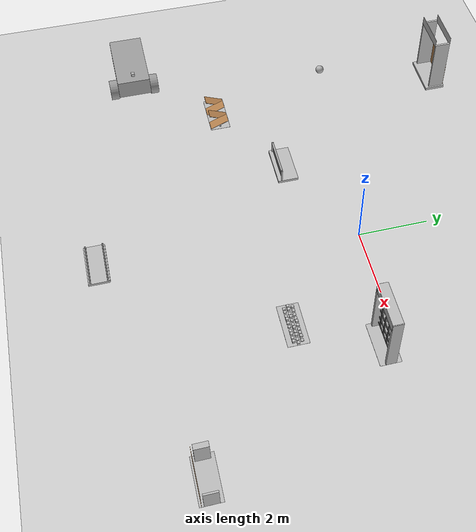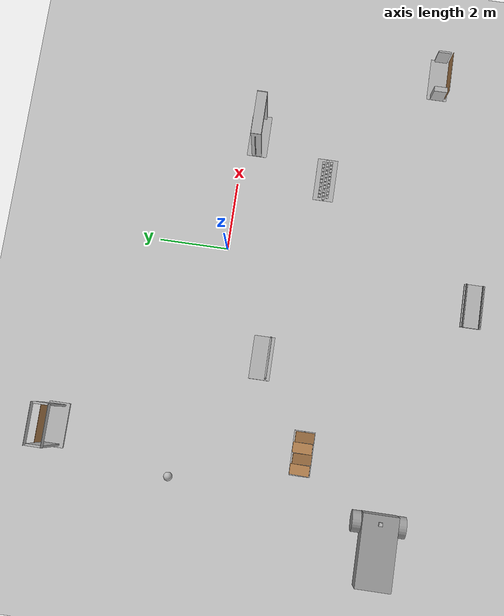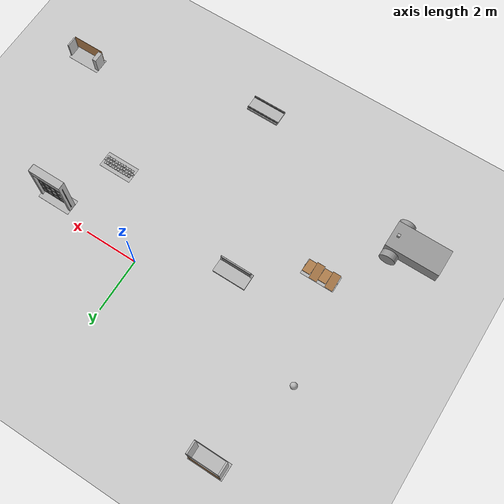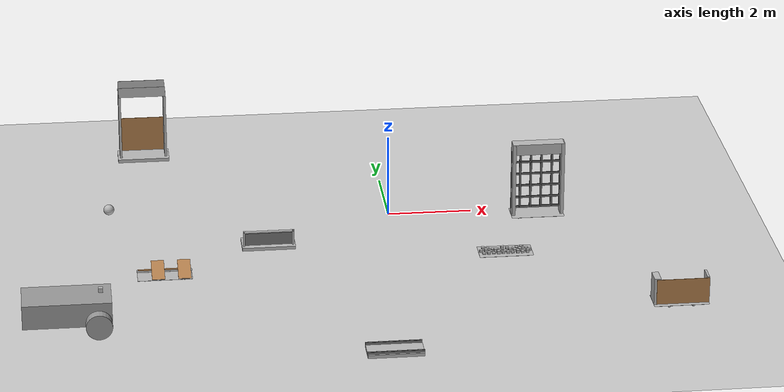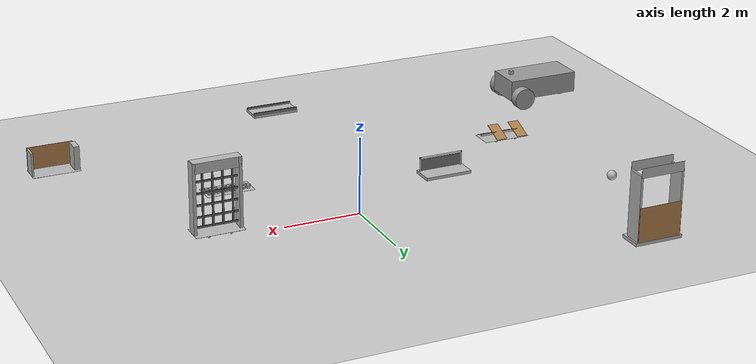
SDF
<sdf version="1.6">
 <world name="default">
  <light name="sun" type="directional">
   <cast_shadows>0</cast_shadows>
   <pose>0 0 10 0 -0 0</pose>
   <diffuse>0.8 0.8 0.8 1</diffuse>
   <specular>0.1 0.1 0.1 1</specular>
   <attenuation>
    <range>1000</range>
    <constant>0.9</constant>
    <linear>0.01</linear>
    <quadratic>0.001</quadratic>
   </attenuation>
   <direction>-0.5 0.5 -1</direction>
  </light>
  <model name="ground_plane">
   <static>1</static>
   <link name="link">
    <collision name="collision">
     <geometry><plane><normal>0 0 1</normal><size>100 100</size></plane></geometry>
     <surface><friction><ode><mu>100</mu><mu2>50</mu2></ode></friction></surface>
    </collision>
    <visual name="visual">
     <cast_shadows>0</cast_shadows>
     <geometry><plane><normal>0 0 1</normal><size>100 100</size></plane></geometry>
     <material>
      <script><uri>file://media/materials/scripts/gazebo.material</uri><name>Gazebo/Grey</name></script>
     </material>
    </visual>
   </link>
  </model>
  <gravity>0 0 -9.8</gravity>
  <magnetic_field>6e-06 2.3e-05 -4.2e-05</magnetic_field>
  <atmosphere type="adiabatic"/>
  <physics name="default_physics" default="0" type="ode">
   <max_step_size>0.001</max_step_size>
   <real_time_factor>1</real_time_factor>
   <real_time_update_rate>1000</real_time_update_rate>
  </physics>
  <scene><ambient>0.4 0.4 0.4 1</ambient><background>0.7 0.7 0.7 1</background><shadows>1</shadows></scene>
  <spherical_coordinates>
   <surface_model>EARTH_WGS84</surface_model>
   <latitude_deg>0</latitude_deg>
   <longitude_deg>0</longitude_deg>
   <elevation>0</elevation>
   <heading_deg>0</heading_deg>
  </spherical_coordinates>
  <model name="follower_vehicle">
   <pose>-7.70692 -5.29778 0.325 0 -0 0</pose>
   <link name="chassis">
    <pose>-0.151427 -0 0.175 0 -0 0</pose>
    <inertial>
     <mass>1.14395</mass>
     <inertia>
      <ixx>0.126164</ixx>
      <ixy>0</ixy>
      <ixz>0</ixz>
      <iyy>0.416519</iyy>
      <iyz>0</iyz>
      <izz>0.481014</izz>
     </inertia>
    </inertial>
    <visual name="visual">
     <geometry><box><size>2.01142 1 0.568726</size></box></geometry>
     <material>
      <script><uri>file://media/materials/scripts/gazebo.material</uri><name>Gazebo/Grey</name></script>
     </material>
    </visual>
    <collision name="collision">
     <geometry><box><size>2.01142 1 0.568726</size></box></geometry>
     <surface>
      <friction><ode><mu>1</mu><mu2>1</mu2><fdir1>0 0 0</fdir1><slip1>0</slip1><slip2>0</slip2></ode></friction>
      <bounce><restitution_coefficient>0</restitution_coefficient><threshold>1e+06</threshold></bounce>
      <contact>
       <collide_without_contact>0</collide_without_contact>
       <collide_without_contact_bitmask>1</collide_without_contact_bitmask>
       <collide_bitmask>1</collide_bitmask>
       <ode>
        <soft_cfm>0</soft_cfm>
        <soft_erp>0.2</soft_erp>
        <kp>1e+13</kp>
        <kd>1</kd>
        <max_vel>0.01</max_vel>
        <min_depth>0</min_depth>
       </ode>
      </contact>
     </surface>
    </collision>
   </link>
   <link name="wheel_1">
    <pose>0.554283 0.625029 -0.025 1.5707 -0 0</pose>
    <inertial>
     <mass>2</mass>
     <inertia><ixx>0.145833</ixx><ixy>0</ixy><ixz>0</ixz><iyy>0.145833</iyy><iyz>0</iyz><izz>0.125</izz></inertia>
    </inertial>
    <visual name="visual">
     <geometry><cylinder><radius>0.3</radius><length>0.25</length></cylinder></geometry>
     <material>
      <script><uri>file://media/materials/scripts/gazebo.material</uri><name>Gazebo/Grey</name></script>
     </material>
    </visual>
    <collision name="collision">
     <geometry><cylinder><radius>0.3</radius><length>0.25</length></cylinder></geometry>
     <surface>
      <friction><ode><mu>1</mu><mu2>1</mu2><fdir1>0 0 0</fdir1><slip1>0</slip1><slip2>0</slip2></ode></friction>
      <bounce><restitution_coefficient>0</restitution_coefficient><threshold>1e+06</threshold></bounce>
      <contact>
       <collide_without_contact>0</collide_without_contact>
       <collide_without_contact_bitmask>1</collide_without_contact_bitmask>
       <collide_bitmask>1</collide_bitmask>
       <ode>
        <soft_cfm>0</soft_cfm>
        <soft_erp>0.2</soft_erp>
        <kp>1e+13</kp>
        <kd>1</kd>
        <max_vel>0.01</max_vel>
        <min_depth>0</min_depth>
       </ode>
      </contact>
     </surface>
    </collision>
   </link>
   <link name="wheel_2">
    <pose>0.554282 -0.625029 -0.025 1.5707 -0 0</pose>
    <inertial>
     <mass>2</mass>
     <inertia><ixx>0.145833</ixx><ixy>0</ixy><ixz>0</ixz><iyy>0.145833</iyy><iyz>0</iyz><izz>0.125</izz></inertia>
    </inertial>
    <visual name="visual">
     <geometry><cylinder><radius>0.3</radius><length>0.25</length></cylinder></geometry>
     <material>
      <script><uri>file://media/materials/scripts/gazebo.material</uri><name>Gazebo/Grey</name></script>
     </material>
    </visual>
    <collision name="collision">
     <geometry><cylinder><radius>0.3</radius><length>0.25</length></cylinder></geometry>
     <surface>
      <friction><ode><mu>1</mu><mu2>1</mu2><fdir1>0 0 0</fdir1><slip1>0</slip1><slip2>0</slip2></ode></friction>
      <bounce><restitution_coefficient>0</restitution_coefficient><threshold>1e+06</threshold></bounce>
      <contact>
       <collide_without_contact>0</collide_without_contact>
       <collide_without_contact_bitmask>1</collide_without_contact_bitmask>
       <collide_bitmask>1</collide_bitmask>
       <ode>
        <soft_cfm>0</soft_cfm>
        <soft_erp>0.2</soft_erp>
        <kp>1e+13</kp>
        <kd>1</kd>
        <max_vel>0.01</max_vel>
        <min_depth>0</min_depth>
       </ode>
      </contact>
     </surface>
    </collision>
   </link>
   <link name="caster">
    <pose>-0.957138 -0 -0.125 0 -0 0</pose>
    <inertial>
     <mass>1</mass>
     <inertia><ixx>0.1</ixx><ixy>0</ixy><ixz>0</ixz><iyy>0.1</iyy><iyz>0</iyz><izz>0.1</izz></inertia>
    </inertial>
    <visual name="visual">
     <geometry><sphere><radius>0.2</radius></sphere></geometry>
     <material>
      <script><uri>file://media/materials/scripts/gazebo.material</uri><name>Gazebo/Grey</name></script>
     </material>
    </visual>
    <collision name="collision">
     <geometry><sphere><radius>0.2</radius></sphere></geometry>
     <surface>
      <friction><ode><mu>1</mu><mu2>1</mu2><fdir1>0 0 0</fdir1><slip1>0</slip1><slip2>0</slip2></ode></friction>
      <bounce><restitution_coefficient>0</restitution_coefficient><threshold>1e+06</threshold></bounce>
      <contact>
       <collide_without_contact>0</collide_without_contact>
       <collide_without_contact_bitmask>1</collide_without_contact_bitmask>
       <collide_bitmask>1</collide_bitmask>
       <ode>
        <soft_cfm>0</soft_cfm>
        <soft_erp>0.2</soft_erp>
        <kp>1e+13</kp>
        <kd>1</kd>
        <max_vel>0.01</max_vel>
        <min_depth>0</min_depth>
       </ode>
      </contact>
     </surface>
    </collision>
   </link>
   <model name="depth_camera">
    <link name="link">
     <pose>0.05 0.05 0.05 0 -0 0</pose>
     <inertial>
      <mass>0.1</mass>
      <inertia>
       <ixx>0.000166667</ixx>
       <iyy>0.000166667</iyy>
       <izz>0.000166667</izz>
       <ixy>0</ixy>
       <ixz>0</ixz>
       <iyz>0</iyz>
      </inertia>
     </inertial>
     <collision name="collision"><geometry><box><size>0.1 0.1 0.1</size></box></geometry></collision>
     <visual name="visual"><geometry><box><size>0.1 0.1 0.1</size></box></geometry></visual>
     <sensor name="camera" type="depth">
      <camera name="depth">
       <horizontal_fov>1.047</horizontal_fov>
       <image><width>320</width><height>240</height></image>
       <clip><near>0.1</near><far>100</far></clip>
      </camera>
      <always_on>1</always_on>
      <update_rate>30</update_rate>
      <visualize>1</visualize>
     </sensor>
    </link>
    <pose>0.569632 -0.03223 0.502056 0 -0 0</pose>
   </model>
   <joint name="chassis_wheel_1_revolute" type="revolute">
    <parent>chassis</parent>
    <child>wheel_1</child>
    <axis>
     <xyz>0 0 1</xyz>
     <use_parent_model_frame>0</use_parent_model_frame>
     <limit>
      <lower>-1.79769e+308</lower>
      <upper>1.79769e+308</upper>
      <effort>-1</effort>
      <velocity>-1</velocity>
     </limit>
     <dynamics>
      <spring_reference>0</spring_reference>
      <spring_stiffness>0</spring_stiffness>
      <damping>0</damping>
      <friction>0</friction>
     </dynamics>
    </axis>
    <physics>
     <ode><limit><cfm>0</cfm><erp>0.2</erp></limit><suspension><cfm>0</cfm><erp>0.2</erp></suspension></ode>
    </physics>
   </joint>
   <joint name="chassis_wheel_2_revolute" type="revolute">
    <parent>chassis</parent>
    <child>wheel_2</child>
    <axis>
     <xyz>0 0 1</xyz>
     <use_parent_model_frame>0</use_parent_model_frame>
     <limit>
      <lower>-1.79769e+308</lower>
      <upper>1.79769e+308</upper>
      <effort>-1</effort>
      <velocity>-1</velocity>
     </limit>
     <dynamics>
      <spring_reference>0</spring_reference>
      <spring_stiffness>0</spring_stiffness>
      <damping>0</damping>
      <friction>0</friction>
     </dynamics>
    </axis>
    <physics>
     <ode><limit><cfm>0</cfm><erp>0.2</erp></limit><suspension><cfm>0</cfm><erp>0.2</erp></suspension></ode>
    </physics>
   </joint>
   <joint name="chassis_caster_ball" type="ball">
    <parent>chassis</parent>
    <child>caster</child>
    <physics>
     <ode><limit><cfm>0</cfm><erp>0.2</erp></limit><suspension><cfm>0</cfm><erp>0.2</erp></suspension></ode>
    </physics>
   </joint>
   <joint name="chassis_depth_camera_link_fixed" type="fixed">
    <parent>chassis</parent>
    <child>depth_camera::link</child>
    <physics>
     <ode><limit><cfm>0</cfm><erp>0.2</erp></limit><suspension><cfm>0</cfm><erp>0.2</erp></suspension></ode>
    </physics>
   </joint>
   <static>0</static>
   <plugin name="follower" filename="libFollowerPlugin.so"/>
  </model>
  <model name="frc2016_ball">
   <pose>-6.71703 0.692442 0.127 0 -0 0</pose>
   <link name="link">
    <inertial>
     <mass>0.213</mass>
     <inertia>
      <ixx>0.00322667</ixx>
      <ixy>0</ixy>
      <ixz>0</ixz>
      <iyy>0.00322667</iyy>
      <iyz>0</iyz>
      <izz>0.00322667</izz>
     </inertia>
    </inertial>
    <visual name="visual"><geometry><sphere><radius>0.127</radius></sphere></geometry></visual>
    <collision name="collision">
     <geometry><sphere><radius>0.127</radius></sphere></geometry>
     <surface>
      <bounce><restitution_coefficient>0.15937</restitution_coefficient><threshold>0</threshold></bounce>
      <contact><ode><max_vel>100</max_vel><min_depth>0.001</min_depth></ode></contact>
     </surface>
    </collision>
   </link>
  </model>
  <model name="frc2016_chevaldefrise">
   <link name="base">
    <inertial>
     <mass>10</mass>
     <pose>0 0 0.15672 0 -0 0</pose>
     <inertia><ixx>0.380221</ixx><ixy>0</ixy><ixz>0</ixz><iyy>1.43365</iyy><iyz>0</iyz><izz>1.64745</izz></inertia>
    </inertial>
    <visual name="platform">
     <pose>0 0 0.06968 0 -0 0</pose>
     <geometry><box><size>1.27 0.5969 0.003175</size></box></geometry>
    </visual>
    <collision name="platform">
     <pose>0 0 0.06968 0 -0 0</pose>
     <geometry><box><size>1.27 0.5969 0.003175</size></box></geometry>
    </collision>
    <visual name="bar">
     <pose>0 0 0.16855 0 1.5707 0</pose>
     <geometry><cylinder><radius>0.02108</radius><length>1.273</length></cylinder></geometry>
    </visual>
    <collision name="bar">
     <pose>0 0 0.16855 0 1.5707 0</pose>
     <geometry><cylinder><radius>0.02108</radius><length>1.27</length></cylinder></geometry>
    </collision>
    <visual name="castor1">
     <pose>-0.45653 -0.16581 0.03175 0 -0 0</pose>
     <geometry><sphere><radius>0.03175</radius></sphere></geometry>
    </visual>
    <collision name="castor1">
     <pose>-0.45653 -0.16581 0.03175 0 -0 0</pose>
     <geometry><sphere><radius>0.03175</radius></sphere></geometry>
    </collision>
    <visual name="castor2">
     <pose>-0.27855 0.21408 0.03175 0 -0 0</pose>
     <geometry><sphere><radius>0.03175</radius></sphere></geometry>
    </visual>
    <collision name="castor2">
     <pose>-0.27855 0.21408 0.03175 0 -0 0</pose>
     <geometry><sphere><radius>0.03175</radius></sphere></geometry>
    </collision>
    <visual name="castor3">
     <pose>0.28191 0.21419 0.03175 0 -0 0</pose>
     <geometry><sphere><radius>0.03175</radius></sphere></geometry>
    </visual>
    <collision name="castor3">
     <pose>0.28191 0.21419 0.03175 0 -0 0</pose>
     <geometry><sphere><radius>0.03175</radius></sphere></geometry>
    </collision>
    <visual name="castor4">
     <pose>0.45965 -0.16602 0.03175 0 -0 0</pose>
     <geometry><sphere><radius>0.03175</radius></sphere></geometry>
    </visual>
    <collision name="castor4">
     <pose>0.45965 -0.16602 0.03175 0 -0 0</pose>
     <geometry><sphere><radius>0.03175</radius></sphere></geometry>
    </collision>
   </link>
   <link name="slant1">
    <pose>-0.4572 0.01307 0.1997 -0.39732 0 0</pose>
    <inertial>
     <pose>0 0.1 0 0 -0 0</pose>
     <mass>2</mass>
     <inertia>
      <ixx>0.0606857</ixx>
      <ixy>0</ixy>
      <ixz>0</ixz>
      <iyy>0.0148723</iyy>
      <iyz>0</iyz>
      <izz>0.0755042</izz>
     </inertia>
    </inertial>
    <visual name="visual">
     <geometry><box><size>0.29845 0.593285 0.0127</size></box></geometry>
     <material><script><name>Gazebo/WoodFloor</name><uri>__default__</uri></script></material>
    </visual>
    <collision name="collision"><geometry><box><size>0.29845 0.593285 0.0127</size></box></geometry></collision>
   </link>
   <link name="slant2">
    <pose>-0.1524 -0.01307 0.1997 0.39732 -0 0</pose>
    <inertial>
     <mass>2</mass>
     <pose>0 -0.1 0 0 -0 0</pose>
     <inertia>
      <ixx>0.0606857</ixx>
      <ixy>0</ixy>
      <ixz>0</ixz>
      <iyy>0.0148723</iyy>
      <iyz>0</iyz>
      <izz>0.0755042</izz>
     </inertia>
    </inertial>
    <visual name="visual">
     <geometry><box><size>0.29845 0.593285 0.0127</size></box></geometry>
     <material><script><name>Gazebo/WoodFloor</name><uri>__default__</uri></script></material>
    </visual>
    <collision name="collision"><geometry><box><size>0.29845 0.593285 0.0127</size></box></geometry></collision>
   </link>
   <link name="slant3">
    <pose>0.1524 0.01307 0.1997 -0.39732 0 0</pose>
    <inertial>
     <pose>0 0.1 0 0 -0 0</pose>
     <mass>2</mass>
     <inertia>
      <ixx>0.0606857</ixx>
      <ixy>0</ixy>
      <ixz>0</ixz>
      <iyy>0.0148723</iyy>
      <iyz>0</iyz>
      <izz>0.0755042</izz>
     </inertia>
    </inertial>
    <visual name="visual">
     <geometry><box><size>0.29845 0.593285 0.0127</size></box></geometry>
     <material><script><name>Gazebo/WoodFloor</name><uri>__default__</uri></script></material>
    </visual>
    <collision name="collision"><geometry><box><size>0.29845 0.593285 0.0127</size></box></geometry></collision>
   </link>
   <link name="slant4">
    <pose>0.4572 -0.01307 0.1997 0.39732 -0 0</pose>
    <inertial>
     <pose>0 -0.1 0 0 -0 0</pose>
     <mass>2</mass>
     <inertia>
      <ixx>0.0606857</ixx>
      <ixy>0</ixy>
      <ixz>0</ixz>
      <iyy>0.0148723</iyy>
      <iyz>0</iyz>
      <izz>0.0755042</izz>
     </inertia>
    </inertial>
    <visual name="visual">
     <geometry><box><size>0.29845 0.593285 0.0127</size></box></geometry>
     <material><script><name>Gazebo/WoodFloor</name><uri>__default__</uri></script></material>
    </visual>
    <collision name="collision"><geometry><box><size>0.29845 0.593285 0.0127</size></box></geometry></collision>
   </link>
   <joint name="slant1_joint" type="revolute">
    <parent>base</parent>
    <child>slant1</child>
    <axis>
     <xyz>1 0 0</xyz>
     <limit><lower>0</lower><upper>1.5707</upper></limit>
     <use_parent_model_frame>0</use_parent_model_frame>
     <dynamics><spring_reference>0</spring_reference><spring_stiffness>0</spring_stiffness></dynamics>
    </axis>
   </joint>
   <joint name="slant2_joint" type="revolute">
    <parent>base</parent>
    <child>slant2</child>
    <axis>
     <xyz>1 0 0</xyz>
     <limit><lower>-1.5707</lower><upper>0</upper></limit>
     <use_parent_model_frame>0</use_parent_model_frame>
     <dynamics><spring_reference>0</spring_reference><spring_stiffness>0</spring_stiffness></dynamics>
    </axis>
   </joint>
   <joint name="slant3_joint" type="revolute">
    <parent>base</parent>
    <child>slant3</child>
    <axis>
     <xyz>1 0 0</xyz>
     <limit><lower>0</lower><upper>1.5707</upper></limit>
     <use_parent_model_frame>0</use_parent_model_frame>
     <dynamics><spring_reference>0</spring_reference><spring_stiffness>0</spring_stiffness></dynamics>
    </axis>
   </joint>
   <joint name="slant4_joint" type="revolute">
    <parent>base</parent>
    <child>slant4</child>
    <axis>
     <xyz>1 0 0</xyz>
     <limit><lower>-1.5707</lower><upper>0</upper></limit>
     <use_parent_model_frame>0</use_parent_model_frame>
     <dynamics><spring_reference>0</spring_reference><spring_stiffness>0</spring_stiffness></dynamics>
    </axis>
   </joint>
   <pose>-5.55579 -2.96331 0 0 -0 0</pose>
  </model>
  <model name="frc2016_drawbridge">
   <link name="base">
    <inertial>
     <mass>10</mass>
     <pose>0 0 1 0 -0 0</pose>
     <inertia><ixx>3.64907</ixx><ixy>0</ixy><ixz>0</ixz><iyy>4.67075</iyy><iyz>0</iyz><izz>1.66649</izz></inertia>
    </inertial>
    <visual name="platform">
     <pose>0 0 0.0425 0 -0 0</pose>
     <geometry><box><size>1.27 0.5969 0.085</size></box></geometry>
    </visual>
    <collision name="platform">
     <pose>0 0 0.0425 0 -0 0</pose>
     <geometry><box><size>1.27 0.5969 0.085</size></box></geometry>
    </collision>
    <visual name="right_wall">
     <pose>0.55879 0.04444 0.889 0 -0 0</pose>
     <geometry><box><size>0.05715 0.45698 1.77165</size></box></geometry>
    </visual>
    <collision name="right_wall">
     <pose>0.55879 0.04444 0.889 0 -0 0</pose>
     <geometry><box><size>0.05715 0.45698 1.77165</size></box></geometry>
    </collision>
    <visual name="left_wall">
     <pose>-0.55879 0.04444 0.889 0 -0 0</pose>
     <geometry><box><size>0.05715 0.45698 1.77165</size></box></geometry>
    </visual>
    <collision name="left_wall">
     <pose>-0.55879 0.04444 0.889 0 -0 0</pose>
     <geometry><box><size>0.05715 0.45698 1.77165</size></box></geometry>
    </collision>
    <visual name="front_upper_wall">
     <pose>0 0.27611 1.84286 0 -0 0</pose>
     <geometry><box><size>1.1557 0.006347 0.254</size></box></geometry>
    </visual>
    <collision name="front_upper_wall">
     <pose>0 0.27611 1.84286 0 -0 0</pose>
     <geometry><box><size>1.1557 0.006347 0.254</size></box></geometry>
    </collision>
    <visual name="back_upper_wall">
     <pose>0 -0.18722 1.84286 0 -0 0</pose>
     <geometry><box><size>1.1557 0.006347 0.254</size></box></geometry>
    </visual>
    <collision name="back_upper_wall">
     <pose>0 -0.18722 1.84286 0 -0 0</pose>
     <geometry><box><size>1.1557 0.006347 0.254</size></box></geometry>
    </collision>
   </link>
   <link name="bridge">
    <pose>0 0.28245 0.50577 0 -0 0</pose>
    <inertial>
     <mass>2</mass>
     <pose>0 -0.28245 -0.50577 0 -0 0</pose>
     <inertia>
      <ixx>0.139361</ixx>
      <ixy>0</ixy>
      <ixz>0</ixz>
      <iyy>0.357088</iyy>
      <iyz>0</iyz>
      <izz>0.217741</izz>
     </inertia>
    </inertial>
    <visual name="visual">
     <geometry><box><size>1.14298 0.006347 0.9144</size></box></geometry>
     <material><script><name>Gazebo/WoodFloor</name><uri>__default__</uri></script></material>
    </visual>
    <collision name="collision"><geometry><box><size>1.14298 0.006347 0.9144</size></box></geometry></collision>
   </link>
   <joint name="bridge_joint" type="revolute">
    <pose>0 0 -0.4172 0 -0 0</pose>
    <parent>base</parent>
    <child>bridge</child>
    <axis>
     <xyz>1 0 0</xyz>
     <limit><lower>-2</lower><upper>0</upper></limit>
     <use_parent_model_frame>0</use_parent_model_frame>
     <dynamics><spring_reference>0</spring_reference><spring_stiffness>0</spring_stiffness></dynamics>
    </axis>
   </joint>
   <pose>-5.73625 4.07642 0 0 -0 0</pose>
  </model>
  <model name="frc2016_lowbar">
   <link name="base">
    <inertial>
     <mass>50</mass>
     <inertia>
      <ixx>0.035543</ixx>
      <ixy>0</ixy>
      <ixz>0</ixz>
      <iyy>0.134412</iyy>
      <iyz>0</iyz>
      <izz>0.165376</izz>
     </inertia>
    </inertial>
    <visual name="platform">
     <pose>0 0 0.039065 0 -0 0</pose>
     <geometry><box><size>1.26 0.5996 0.07813</size></box></geometry>
    </visual>
    <collision name="platform">
     <pose>0 0 0.039065 0 -0 0</pose>
     <geometry><box><size>1.27 0.6096 0.07813</size></box></geometry>
    </collision>
    <visual name="right_column">
     <pose>-0.57845 -0.18464 0.26863 0 -0 0</pose>
     <geometry><cylinder><radius>0.0254</radius><length>0.381</length></cylinder></geometry>
    </visual>
    <collision name="right_column">
     <pose>-0.57845 -0.18464 0.26863 0 -0 0</pose>
     <geometry><cylinder><radius>0.0254</radius><length>0.381</length></cylinder></geometry>
    </collision>
    <visual name="left_column">
     <pose>0.57845 -0.18464 0.26863 0 -0 0</pose>
     <geometry><cylinder><radius>0.0254</radius><length>0.381</length></cylinder></geometry>
    </visual>
    <collision name="left_column">
     <pose>0.57845 -0.18464 0.26863 0 -0 0</pose>
     <geometry><cylinder><radius>0.0254</radius><length>0.381</length></cylinder></geometry>
    </collision>
    <visual name="horizontal">
     <pose>0 -0.18464 0.43556 0 1.5707 0</pose>
     <geometry><cylinder><radius>0.0254</radius><length>1.2018</length></cylinder></geometry>
    </visual>
    <collision name="horizontal">
     <pose>0 -0.18464 0.43556 0 1.5707 0</pose>
     <geometry><cylinder><radius>0.0254</radius><length>1.2018</length></cylinder></geometry>
    </collision>
   </link>
   <link name="wall">
    <pose>0 -0.1778 0.24323 0 -0 0</pose>
    <inertial>
     <mass>1</mass>
     <inertia>
      <ixx>0.00774528</ixx>
      <ixy>0</ixy>
      <ixz>0</ixz>
      <iyy>0.116613</iyy>
      <iyz>0</iyz>
      <izz>0.108874</izz>
     </inertia>
    </inertial>
    <visual name="visual">
     <geometry><box><size>1.1176 0.00635 0.3</size></box></geometry>
     <material><ambient>0.46 0.46 0.46 1</ambient><diffuse>0.46 0.46 0.46 1</diffuse></material>
    </visual>
    <collision name="collision"><geometry><box><size>1.143 0.00635 0.3</size></box></geometry></collision>
   </link>
   <joint name="bar_joint" type="revolute">
    <pose>0 0 0.36378 0 -0 0</pose>
    <parent>base</parent>
    <child>wall</child>
    <axis>
     <xyz>1 0 0</xyz>
     <limit><lower>-1.5707</lower><upper>1.5707</upper></limit>
     <use_parent_model_frame>0</use_parent_model_frame>
     <dynamics><spring_reference>0</spring_reference><spring_stiffness>0</spring_stiffness></dynamics>
    </axis>
   </joint>
   <pose>-3.02921 -1.44526 0 0 -0 0</pose>
  </model>
  <model name="frc2016_moat">
   <static>1</static>
   <link name="link">
    <inertial>
     <mass>10</mass>
     <pose>0 0 0.06738 0 -0 0</pose>
     <inertia><ixx>0.312195</ixx><ixy>0</ixy><ixz>0</ixz><iyy>1.35927</iyy><iyz>0</iyz><izz>1.64109</izz></inertia>
    </inertial>
    <visual name="platform">
     <pose>0 0 0.0381 0 -0 0</pose>
     <geometry><box><size>1.27 0.5969 0.0762</size></box></geometry>
    </visual>
    <collision name="platform">
     <pose>0 0 0.0381 0 -0 0</pose>
     <geometry><box><size>1.27 0.5969 0.0762</size></box></geometry>
    </collision>
    <visual name="tube1_side1">
     <pose>0 -0.25876 0.10301 0 -0 0</pose>
     <geometry><box><size>1.27 0.003175 0.0635</size></box></geometry>
     <material><ambient>0.46 0.46 0.46 1</ambient><diffuse>0.46 0.46 0.46 1</diffuse></material>
    </visual>
    <collision name="tube1_side1">
     <pose>0 -0.25876 0.10301 0 -0 0</pose>
     <geometry><box><size>1.27 0.003175 0.0635</size></box></geometry>
    </collision>
    <visual name="tube1_side2">
     <pose>0 -0.22384 0.10301 0 -0 0</pose>
     <geometry><box><size>1.27 0.003175 0.0635</size></box></geometry>
     <material><ambient>0.46 0.46 0.46 1</ambient><diffuse>0.46 0.46 0.46 1</diffuse></material>
    </visual>
    <collision name="tube1_side2">
     <pose>0 -0.22384 0.10301 0 -0 0</pose>
     <geometry><box><size>1.27 0.003175 0.0635</size></box></geometry>
    </collision>
    <visual name="tube1_top">
     <pose>0 -0.2413 0.13317 0 -0 0</pose>
     <geometry><box><size>1.27 0.0381 0.003175</size></box></geometry>
     <material><ambient>0.46 0.46 0.46 1</ambient><diffuse>0.46 0.46 0.46 1</diffuse></material>
    </visual>
    <collision name="tube1_top">
     <pose>0 -0.2413 0.13317 0 -0 0</pose>
     <geometry><box><size>1.27 0.0381 0.003175</size></box></geometry>
    </collision>
    <visual name="tube2_side1">
     <pose>0 0.22384 0.10301 0 -0 0</pose>
     <geometry><box><size>1.27 0.003175 0.0635</size></box></geometry>
     <material><ambient>0.46 0.46 0.46 1</ambient><diffuse>0.46 0.46 0.46 1</diffuse></material>
    </visual>
    <collision name="tube2_side1">
     <pose>0 0.22384 0.10301 0 -0 0</pose>
     <geometry><box><size>1.27 0.003175 0.0635</size></box></geometry>
    </collision>
    <visual name="tube2_side2">
     <pose>0 0.25876 0.10301 0 -0 0</pose>
     <geometry><box><size>1.27 0.003175 0.0635</size></box></geometry>
     <material><ambient>0.46 0.46 0.46 1</ambient><diffuse>0.46 0.46 0.46 1</diffuse></material>
    </visual>
    <collision name="tube2_side2">
     <pose>0 0.25876 0.10301 0 -0 0</pose>
     <geometry><box><size>1.27 0.003175 0.0635</size></box></geometry>
    </collision>
    <visual name="tube2_top">
     <pose>0 0.2413 0.13317 0 -0 0</pose>
     <geometry><box><size>1.27 0.0381 0.003175</size></box></geometry>
     <material><ambient>0.46 0.46 0.46 1</ambient><diffuse>0.46 0.46 0.46 1</diffuse></material>
    </visual>
    <collision name="tube2_top">
     <pose>0 0.2413 0.13317 0 -0 0</pose>
     <geometry><box><size>1.27 0.0381 0.003175</size></box></geometry>
    </collision>
   </link>
   <pose>-0.677547 -7.29799 0 0 -0 0</pose>
  </model>
  <model name="frc2016_portcullis">
   <link name="base">
    <inertial>
     <mass>50</mass>
     <pose>0 0 1.02941 0 -0 0</pose>
     <inertia><ixx>3.81711</ixx><ixy>0</ixy><ixz>0</ixz><iyy>4.87698</iyy><iyz>0</iyz><izz>1.6283</izz></inertia>
    </inertial>
    <visual name="platform">
     <pose>0 0 0.07284 0 -0 0</pose>
     <geometry><box><size>1.27 0.5842 0.003175</size></box></geometry>
    </visual>
    <collision name="platform">
     <pose>0 0 0.07284 0 -0 0</pose>
     <geometry><box><size>1.27 0.5842 0.003175</size></box></geometry>
    </collision>
    <visual name="left_column">
     <pose>0.59284 0 0.99042 0 -0 0</pose>
     <geometry><box><size>0.08375 0.28575 1.83198</size></box></geometry>
    </visual>
    <collision name="left_column">
     <pose>0.59284 0 0.99042 0 -0 0</pose>
     <geometry><box><size>0.08375 0.28575 1.83198</size></box></geometry>
    </collision>
    <visual name="right_column">
     <pose>-0.57759 0 0.99042 0 -0 0</pose>
     <geometry><box><size>0.08375 0.28575 1.83198</size></box></geometry>
    </visual>
    <collision name="right_column">
     <pose>-0.57759 0 0.99042 0 -0 0</pose>
     <geometry><box><size>0.08375 0.28575 1.83198</size></box></geometry>
    </collision>
    <visual name="top">
     <pose>-0.00034 0 1.77722 0 -0 0</pose>
     <geometry><box><size>1.22962 0.28575 0.26657</size></box></geometry>
    </visual>
    <collision name="top">
     <pose>-0.00034 0 1.77722 0 -0 0</pose>
     <geometry><box><size>1.22962 0.28575 0.26657</size></box></geometry>
    </collision>
    <visual name="castor1">
     <pose>-0.45651 -0.16234 0.03272 0 -0 0</pose>
     <geometry><sphere><radius>0.03272</radius></sphere></geometry>
    </visual>
    <collision name="castor1">
     <pose>-0.45651 -0.16234 0.03272 0 -0 0</pose>
     <geometry><sphere><radius>0.03272</radius></sphere></geometry>
    </collision>
    <visual name="castor2">
     <pose>-0.27883 0.21836 0.03272 0 -0 0</pose>
     <geometry><sphere><radius>0.03272</radius></sphere></geometry>
    </visual>
    <collision name="castor2">
     <pose>-0.27883 0.21836 0.03272 0 -0 0</pose>
     <geometry><sphere><radius>0.03272</radius></sphere></geometry>
    </collision>
    <visual name="castor3">
     <pose>0.28083 0.21906 0.03272 0 -0 0</pose>
     <geometry><sphere><radius>0.03272</radius></sphere></geometry>
    </visual>
    <collision name="castor3">
     <pose>0.28083 0.21906 0.03272 0 -0 0</pose>
     <geometry><sphere><radius>0.03272</radius></sphere></geometry>
    </collision>
    <visual name="castor4">
     <pose>0.45871 -0.16186 0.03272 0 -0 0</pose>
     <geometry><sphere><radius>0.03272</radius></sphere></geometry>
    </visual>
    <collision name="castor4">
     <pose>0.45871 -0.16186 0.03272 0 -0 0</pose>
     <geometry><sphere><radius>0.03272</radius></sphere></geometry>
    </collision>
   </link>
   <link name="gate">
    <pose>-0.0287 0.02885 0.93327 0 -0 0</pose>
    <inertial>
     <mass>2</mass>
     <inertia><ixx>3.81711</ixx><ixy>0</ixy><ixz>0</ixz><iyy>4.87698</iyy><iyz>0</iyz><izz>1.6283</izz></inertia>
    </inertial>
    <collision name="collision"><geometry><box><size>1.1938 0.02496 1.45732</size></box></geometry></collision>
    <visual name="horz_1">
     <pose>0 0 -0.70326 0 -0 0</pose>
     <geometry><box><size>1.1938 0.02496 0.0508</size></box></geometry>
     <material><ambient>0.4 0.4 0.4 1</ambient><diffuse>0.4 0.4 0.4 1</diffuse></material>
    </visual>
    <visual name="horz_2">
     <pose>0 0 -0.44926 0 -0 0</pose>
     <geometry><box><size>1.1938 0.02496 0.0508</size></box></geometry>
     <material><ambient>0.4 0.4 0.4 1</ambient><diffuse>0.4 0.4 0.4 1</diffuse></material>
    </visual>
    <visual name="horz_3">
     <pose>0 0 -0.14517 0 -0 0</pose>
     <geometry><box><size>1.1938 0.02496 0.0508</size></box></geometry>
     <material><ambient>0.4 0.4 0.4 1</ambient><diffuse>0.4 0.4 0.4 1</diffuse></material>
    </visual>
    <visual name="horz_4">
     <pose>0 0 0.16034 0 -0 0</pose>
     <geometry><box><size>1.1938 0.02496 0.0508</size></box></geometry>
     <material><ambient>0.4 0.4 0.4 1</ambient><diffuse>0.4 0.4 0.4 1</diffuse></material>
    </visual>
    <visual name="horz_5">
     <pose>0 0 0.46514 0 -0 0</pose>
     <geometry><box><size>1.1938 0.02496 0.0508</size></box></geometry>
     <material><ambient>0.4 0.4 0.4 1</ambient><diffuse>0.4 0.4 0.4 1</diffuse></material>
    </visual>
    <visual name="horz_6">
     <pose>0 0 0.72994 0 -0 0</pose>
     <geometry><box><size>1.1938 0.02496 0.0508</size></box></geometry>
     <material><ambient>0.4 0.4 0.4 1</ambient><diffuse>0.4 0.4 0.4 1</diffuse></material>
    </visual>
    <visual name="vert_1">
     <pose>-0.58448 0 0 0 -0 0</pose>
     <geometry><box><size>0.02495 0.02496 1.45732</size></box></geometry>
     <material><ambient>0.4 0.4 0.4 1</ambient><diffuse>0.4 0.4 0.4 1</diffuse></material>
    </visual>
    <visual name="vert_2">
     <pose>-0.38128 0 0 0 -0 0</pose>
     <geometry><box><size>0.0508 0.02496 1.45732</size></box></geometry>
     <material><ambient>0.4 0.4 0.4 1</ambient><diffuse>0.4 0.4 0.4 1</diffuse></material>
    </visual>
    <visual name="vert_3">
     <pose>-0.12728 0 0 0 -0 0</pose>
     <geometry><box><size>0.0508 0.02496 1.45732</size></box></geometry>
     <material><ambient>0.4 0.4 0.4 1</ambient><diffuse>0.4 0.4 0.4 1</diffuse></material>
    </visual>
    <visual name="vert_4">
     <pose>0.12672 0 0 0 -0 0</pose>
     <geometry><box><size>0.0508 0.02496 1.45732</size></box></geometry>
     <material><ambient>0.4 0.4 0.4 1</ambient><diffuse>0.4 0.4 0.4 1</diffuse></material>
    </visual>
    <visual name="vert_5">
     <pose>0.38072 0 0 0 -0 0</pose>
     <geometry><box><size>0.0508 0.02496 1.45732</size></box></geometry>
     <material><ambient>0.4 0.4 0.4 1</ambient><diffuse>0.4 0.4 0.4 1</diffuse></material>
    </visual>
    <visual name="vert_6">
     <pose>0.58392 0 0 0 -0 0</pose>
     <geometry><box><size>0.02495 0.02496 1.45732</size></box></geometry>
     <material><ambient>0.4 0.4 0.4 1</ambient><diffuse>0.4 0.4 0.4 1</diffuse></material>
    </visual>
   </link>
   <joint name="joint" type="prismatic">
    <parent>base</parent>
    <child>gate</child>
    <axis>
     <xyz>0 0 1</xyz>
     <limit><lower>0</lower><upper>1</upper></limit>
     <use_parent_model_frame>0</use_parent_model_frame>
     <dynamics><spring_reference>0</spring_reference><spring_stiffness>0</spring_stiffness></dynamics>
    </axis>
   </joint>
   <pose>3.54919 -0.428059 0 0 -0 0</pose>
  </model>
  <model name="frc2016_roughterrain">
   <static>1</static>
   <link name="link">
    <visual name="platform">
     <pose>0 0 0.08269 0 -0 0</pose>
     <geometry><box><size>1.27 0.5969 0.003175</size></box></geometry>
    </visual>
    <collision name="platform">
     <pose>0 0 0.08269 0 -0 0</pose>
     <geometry><box><size>1.27 0.5969 0.003175</size></box></geometry>
    </collision>
    <visual name="row1_block1_sm">
     <pose>0.51435 0.1143 0.09698 0 -0 0</pose>
     <geometry><box><size>0.0762 0.0762 0.0254</size></box></geometry>
    </visual>
    <collision name="row1_block1_sm">
     <pose>0.51435 0.1143 0.09698 0 -0 0</pose>
     <geometry><box><size>0.0762 0.0762 0.0254</size></box></geometry>
    </collision>
    <visual name="row1_block2_lg">
     <pose>0.40005 0.1143 0.12238 0 -0 0</pose>
     <geometry><box><size>0.0762 0.0762 0.0762</size></box></geometry>
    </visual>
    <collision name="row1_block2_lg">
     <pose>0.40005 0.1143 0.12238 0 -0 0</pose>
     <geometry><box><size>0.0762 0.0762 0.0762</size></box></geometry>
    </collision>
    <visual name="row1_block3_md">
     <pose>0.28575 0.1143 0.10968 0 -0 0</pose>
     <geometry><box><size>0.0762 0.0762 0.0508</size></box></geometry>
    </visual>
    <collision name="row1_block3_md">
     <pose>0.28575 0.1143 0.10968 0 -0 0</pose>
     <geometry><box><size>0.0762 0.0762 0.0508</size></box></geometry>
    </collision>
    <visual name="row1_block4_sm">
     <pose>0.17145 0.1143 0.09698 0 -0 0</pose>
     <geometry><box><size>0.0762 0.0762 0.0254</size></box></geometry>
    </visual>
    <collision name="row1_block4_sm">
     <pose>0.17145 0.1143 0.09698 0 -0 0</pose>
     <geometry><box><size>0.0762 0.0762 0.0254</size></box></geometry>
    </collision>
    <visual name="row1_block5_md">
     <pose>0.05715 0.1143 0.10968 0 -0 0</pose>
     <geometry><box><size>0.0762 0.0762 0.0508</size></box></geometry>
    </visual>
    <collision name="row1_block5_md">
     <pose>0.05715 0.1143 0.10968 0 -0 0</pose>
     <geometry><box><size>0.0762 0.0762 0.0508</size></box></geometry>
    </collision>
    <visual name="row1_block6_lg">
     <pose>-0.05715 0.1143 0.12238 0 -0 0</pose>
     <geometry><box><size>0.0762 0.0762 0.0762</size></box></geometry>
    </visual>
    <collision name="row1_block6_lg">
     <pose>-0.05715 0.1143 0.12238 0 -0 0</pose>
     <geometry><box><size>0.0762 0.0762 0.0762</size></box></geometry>
    </collision>
    <visual name="row1_block7_sm">
     <pose>-0.17145 0.1143 0.09698 0 -0 0</pose>
     <geometry><box><size>0.0762 0.0762 0.0254</size></box></geometry>
    </visual>
    <collision name="row1_block7_sm">
     <pose>-0.17145 0.1143 0.09698 0 -0 0</pose>
     <geometry><box><size>0.0762 0.0762 0.0254</size></box></geometry>
    </collision>
    <visual name="row1_block8_sm">
     <pose>-0.28575 0.1143 0.09698 0 -0 0</pose>
     <geometry><box><size>0.0762 0.0762 0.0254</size></box></geometry>
    </visual>
    <collision name="row1_block8_sm">
     <pose>-0.28575 0.1143 0.09698 0 -0 0</pose>
     <geometry><box><size>0.0762 0.0762 0.0254</size></box></geometry>
    </collision>
    <visual name="row1_block9_md">
     <pose>-0.40005 0.1143 0.10968 0 -0 0</pose>
     <geometry><box><size>0.0762 0.0762 0.0508</size></box></geometry>
    </visual>
    <collision name="row1_block9_md">
     <pose>-0.40005 0.1143 0.10968 0 -0 0</pose>
     <geometry><box><size>0.0762 0.0762 0.0508</size></box></geometry>
    </collision>
    <visual name="row1_block10_lg">
     <pose>-0.51435 0.1143 0.12238 0 -0 0</pose>
     <geometry><box><size>0.0762 0.0762 0.0762</size></box></geometry>
    </visual>
    <collision name="row1_block10_lg">
     <pose>-0.51435 0.1143 0.12238 0 -0 0</pose>
     <geometry><box><size>0.0762 0.0762 0.0762</size></box></geometry>
    </collision>
    <visual name="row2_block1_md">
     <pose>0.5715 0 0.10968 0 -0 0</pose>
     <geometry><box><size>0.0762 0.0762 0.0508</size></box></geometry>
    </visual>
    <collision name="row2_block1_md">
     <pose>0.5715 0 0.10968 0 -0 0</pose>
     <geometry><box><size>0.0762 0.0762 0.0508</size></box></geometry>
    </collision>
    <visual name="row2_block2_sm">
     <pose>0.4572 0 0.09698 0 -0 0</pose>
     <geometry><box><size>0.0762 0.0762 0.0254</size></box></geometry>
    </visual>
    <collision name="row2_block2_sm">
     <pose>0.4572 0 0.09698 0 -0 0</pose>
     <geometry><box><size>0.0762 0.0762 0.0254</size></box></geometry>
    </collision>
    <visual name="row2_block3_lg">
     <pose>0.3429 0 0.12238 0 -0 0</pose>
     <geometry><box><size>0.0762 0.0762 0.0762</size></box></geometry>
    </visual>
    <collision name="row2_block3_lg">
     <pose>0.3429 0 0.12238 0 -0 0</pose>
     <geometry><box><size>0.0762 0.0762 0.0762</size></box></geometry>
    </collision>
    <visual name="row2_block4_md">
     <pose>0.2286 0 0.10968 0 -0 0</pose>
     <geometry><box><size>0.0762 0.0762 0.0508</size></box></geometry>
    </visual>
    <collision name="row2_block4_md">
     <pose>0.2286 0 0.10968 0 -0 0</pose>
     <geometry><box><size>0.0762 0.0762 0.0508</size></box></geometry>
    </collision>
    <visual name="row2_block5_lg">
     <pose>0.1143 0 0.12238 0 -0 0</pose>
     <geometry><box><size>0.0762 0.0762 0.0762</size></box></geometry>
    </visual>
    <collision name="row2_block5_lg">
     <pose>0.1143 0 0.12238 0 -0 0</pose>
     <geometry><box><size>0.0762 0.0762 0.0762</size></box></geometry>
    </collision>
    <visual name="row2_block6_sm">
     <pose>0 0 0.09698 0 -0 0</pose>
     <geometry><box><size>0.0762 0.0762 0.0254</size></box></geometry>
    </visual>
    <collision name="row2_block6_sm">
     <pose>0 0 0.09698 0 -0 0</pose>
     <geometry><box><size>0.0762 0.0762 0.0254</size></box></geometry>
    </collision>
    <visual name="row2_block7_md">
     <pose>-0.1143 0 0.10968 0 -0 0</pose>
     <geometry><box><size>0.0762 0.0762 0.0508</size></box></geometry>
    </visual>
    <collision name="row2_block7_md">
     <pose>-0.1143 0 0.10968 0 -0 0</pose>
     <geometry><box><size>0.0762 0.0762 0.0508</size></box></geometry>
    </collision>
    <visual name="row2_block8_lg">
     <pose>-0.2286 0 0.12238 0 -0 0</pose>
     <geometry><box><size>0.0762 0.0762 0.0762</size></box></geometry>
    </visual>
    <collision name="row2_block8_lg">
     <pose>-0.2286 0 0.12238 0 -0 0</pose>
     <geometry><box><size>0.0762 0.0762 0.0762</size></box></geometry>
    </collision>
    <visual name="row2_block9_sm">
     <pose>-0.3429 0 0.09698 0 -0 0</pose>
     <geometry><box><size>0.0762 0.0762 0.0254</size></box></geometry>
    </visual>
    <collision name="row2_block9_sm">
     <pose>-0.3429 0 0.09698 0 -0 0</pose>
     <geometry><box><size>0.0762 0.0762 0.0254</size></box></geometry>
    </collision>
    <visual name="row2_block10_lg">
     <pose>-0.4572 0 0.12238 0 -0 0</pose>
     <geometry><box><size>0.0762 0.0762 0.0762</size></box></geometry>
    </visual>
    <collision name="row2_block10_lg">
     <pose>-0.4572 0 0.12238 0 -0 0</pose>
     <geometry><box><size>0.0762 0.0762 0.0762</size></box></geometry>
    </collision>
    <visual name="row2_block11_md">
     <pose>-0.5715 0 0.10968 0 -0 0</pose>
     <geometry><box><size>0.0762 0.0762 0.0508</size></box></geometry>
    </visual>
    <collision name="row2_block11_md">
     <pose>-0.5715 0 0.10968 0 -0 0</pose>
     <geometry><box><size>0.0762 0.0762 0.0508</size></box></geometry>
    </collision>
    <visual name="row3_block1_lg">
     <pose>0.51435 -0.1143 0.12238 0 -0 0</pose>
     <geometry><box><size>0.0762 0.0762 0.0762</size></box></geometry>
    </visual>
    <collision name="row3_block1_lg">
     <pose>0.51435 -0.1143 0.12238 0 -0 0</pose>
     <geometry><box><size>0.0762 0.0762 0.0762</size></box></geometry>
    </collision>
    <visual name="row3_block2_md">
     <pose>0.40005 -0.1143 0.10968 0 -0 0</pose>
     <geometry><box><size>0.0762 0.0762 0.0508</size></box></geometry>
    </visual>
    <collision name="row3_block2_md">
     <pose>0.40005 -0.1143 0.10968 0 -0 0</pose>
     <geometry><box><size>0.0762 0.0762 0.0508</size></box></geometry>
    </collision>
    <visual name="row3_block3_lg">
     <pose>0.28575 -0.1143 0.12238 0 -0 0</pose>
     <geometry><box><size>0.0762 0.0762 0.0762</size></box></geometry>
    </visual>
    <collision name="row3_block3_lg">
     <pose>0.28575 -0.1143 0.12238 0 -0 0</pose>
     <geometry><box><size>0.0762 0.0762 0.0762</size></box></geometry>
    </collision>
    <visual name="row3_block4_sm">
     <pose>0.17145 -0.1143 0.09698 0 -0 0</pose>
     <geometry><box><size>0.0762 0.0762 0.0254</size></box></geometry>
    </visual>
    <collision name="row3_block4_sm">
     <pose>0.17145 -0.1143 0.09698 0 -0 0</pose>
     <geometry><box><size>0.0762 0.0762 0.0254</size></box></geometry>
    </collision>
    <visual name="row3_block5_md">
     <pose>0.05715 -0.1143 0.10968 0 -0 0</pose>
     <geometry><box><size>0.0762 0.0762 0.0508</size></box></geometry>
    </visual>
    <collision name="row3_block5_md">
     <pose>0.05715 -0.1143 0.10968 0 -0 0</pose>
     <geometry><box><size>0.0762 0.0762 0.0508</size></box></geometry>
    </collision>
    <visual name="row3_block6_md">
     <pose>-0.05715 -0.1143 0.10968 0 -0 0</pose>
     <geometry><box><size>0.0762 0.0762 0.0508</size></box></geometry>
    </visual>
    <collision name="row3_block6_md">
     <pose>-0.05715 -0.1143 0.10968 0 -0 0</pose>
     <geometry><box><size>0.0762 0.0762 0.0508</size></box></geometry>
    </collision>
    <visual name="row3_block7_lg">
     <pose>-0.17145 -0.1143 0.12238 0 -0 0</pose>
     <geometry><box><size>0.0762 0.0762 0.0762</size></box></geometry>
    </visual>
    <collision name="row3_block7_lg">
     <pose>-0.17145 -0.1143 0.12238 0 -0 0</pose>
     <geometry><box><size>0.0762 0.0762 0.0762</size></box></geometry>
    </collision>
    <visual name="row3_block8_sm">
     <pose>-0.28575 -0.1143 0.09698 0 -0 0</pose>
     <geometry><box><size>0.0762 0.0762 0.0254</size></box></geometry>
    </visual>
    <collision name="row3_block8_sm">
     <pose>-0.28575 -0.1143 0.09698 0 -0 0</pose>
     <geometry><box><size>0.0762 0.0762 0.0254</size></box></geometry>
    </collision>
    <visual name="row3_block9_md">
     <pose>-0.40005 -0.1143 0.10968 0 -0 0</pose>
     <geometry><box><size>0.0762 0.0762 0.0508</size></box></geometry>
    </visual>
    <collision name="row3_block9_md">
     <pose>-0.40005 -0.1143 0.10968 0 -0 0</pose>
     <geometry><box><size>0.0762 0.0762 0.0508</size></box></geometry>
    </collision>
    <visual name="row3_block10_sm">
     <pose>-0.51435 -0.1143 0.09698 0 -0 0</pose>
     <geometry><box><size>0.0762 0.0762 0.0254</size></box></geometry>
    </visual>
    <collision name="row3_block10_sm">
     <pose>-0.51435 -0.1143 0.09698 0 -0 0</pose>
     <geometry><box><size>0.0762 0.0762 0.0254</size></box></geometry>
    </collision>
   </link>
   <pose>2.47401 -2.55738 0 0 -0 0</pose>
  </model>
  <model name="frc2016_sallyport">
   <link name="base">
    <inertial>
     <mass>50</mass>
     <pose>0 0 0.35406 0 -0 0</pose>
     <inertia><ixx>0.727808</ixx><ixy>0</ixy><ixz>0</ixz><iyy>1.77488</iyy><iyz>0</iyz><izz>1.64109</izz></inertia>
    </inertial>
    <visual name="platform">
     <pose>0 0 0.06974 0 -0 0</pose>
     <geometry><box><size>1.27 0.5969 0.003175</size></box></geometry>
    </visual>
    <collision name="platform">
     <pose>0 0 0.06974 0 -0 0</pose>
     <geometry><box><size>1.27 0.5969 0.003175</size></box></geometry>
    </collision>
    <visual name="left_column">
     <pose>-0.5588 0.00318 0.38876 0 -0 0</pose>
     <geometry><box><size>0.1524 0.38735 0.635</size></box></geometry>
    </visual>
    <collision name="left_column">
     <pose>-0.5588 0.00318 0.38876 0 -0 0</pose>
     <geometry><box><size>0.1524 0.38735 0.635</size></box></geometry>
    </collision>
    <visual name="right_column">
     <pose>0.6096 0.00635 0.38876 0 -0 0</pose>
     <geometry><box><size>0.0508 0.381 0.635</size></box></geometry>
    </visual>
    <collision name="right_column">
     <pose>0.6096 0.00635 0.38876 0 -0 0</pose>
     <geometry><box><size>0.0508 0.381 0.635</size></box></geometry>
    </collision>
    <visual name="castor1">
     <pose>-0.45886 0.15389 0.03487 0 -0 0</pose>
     <geometry><sphere><radius>0.03487</radius></sphere></geometry>
    </visual>
    <collision name="castor1">
     <pose>-0.45886 0.15389 0.03487 0 -0 0</pose>
     <geometry><sphere><radius>0.03487</radius></sphere></geometry>
    </collision>
    <visual name="castor2">
     <pose>-0.28117 -0.22559 0.03487 0 -0 0</pose>
     <geometry><sphere><radius>0.03487</radius></sphere></geometry>
    </visual>
    <collision name="castor2">
     <pose>-0.28117 -0.22559 0.03487 0 -0 0</pose>
     <geometry><sphere><radius>0.03487</radius></sphere></geometry>
    </collision>
    <visual name="castor3">
     <pose>0.27933 -0.2272 0.03487 0 -0 0</pose>
     <geometry><sphere><radius>0.03487</radius></sphere></geometry>
    </visual>
    <collision name="castor3">
     <pose>0.27933 -0.2272 0.03487 0 -0 0</pose>
     <geometry><sphere><radius>0.03487</radius></sphere></geometry>
    </collision>
    <visual name="castor4">
     <pose>0.4571 0.15424 0.03487 0 -0 0</pose>
     <geometry><sphere><radius>0.03487</radius></sphere></geometry>
    </visual>
    <collision name="castor4">
     <pose>0.4571 0.15424 0.03487 0 -0 0</pose>
     <geometry><sphere><radius>0.03487</radius></sphere></geometry>
    </collision>
   </link>
   <link name="door">
    <pose>0.02255 -0.24321 0.40332 0 -0 0</pose>
    <inertial>
     <pose>0 0 0 -1.5707 0 0</pose>
     <mass>2</mass>
     <inertia>
      <ixx>0.0619421</ixx>
      <ixy>0</ixy>
      <ixz>0</ixz>
      <iyy>0.246462</iyy>
      <iyz>0</iyz>
      <izz>0.30839</izz>
     </inertia>
    </inertial>
    <visual name="visual">
     <geometry><box><size>1.21603 0.00635 0.6096</size></box></geometry>
     <material><script><name>Gazebo/WoodFloor</name><uri>__default__</uri></script></material>
    </visual>
    <collision name="collision"><geometry><box><size>1.21603 0.00635 0.6096</size></box></geometry></collision>
   </link>
   <joint name="door_joint" type="revolute">
    <pose>-0.608015 0 0 0 -0 0</pose>
    <parent>base</parent>
    <child>door</child>
    <axis>
     <xyz>0 0 1</xyz>
     <limit><lower>-3.1415</lower><upper>0</upper></limit>
     <use_parent_model_frame>0</use_parent_model_frame>
     <dynamics><spring_reference>0</spring_reference><spring_stiffness>0</spring_stiffness></dynamics>
    </axis>
   </joint>
   <pose>6.0595 -5.54175 0 0 -0 0</pose>
  </model>
 </world>
</sdf>
